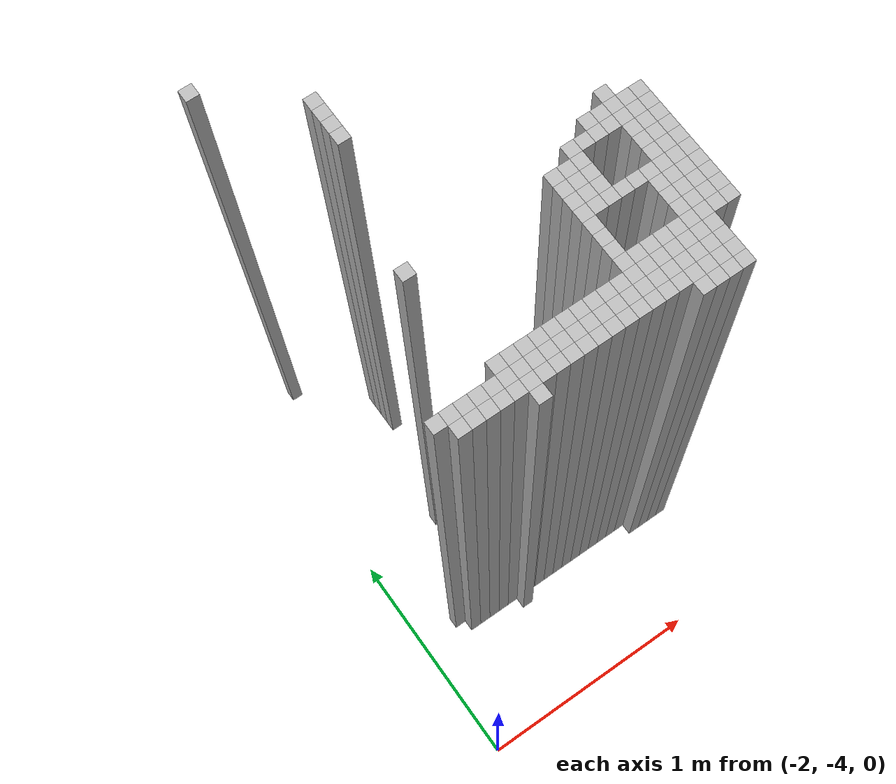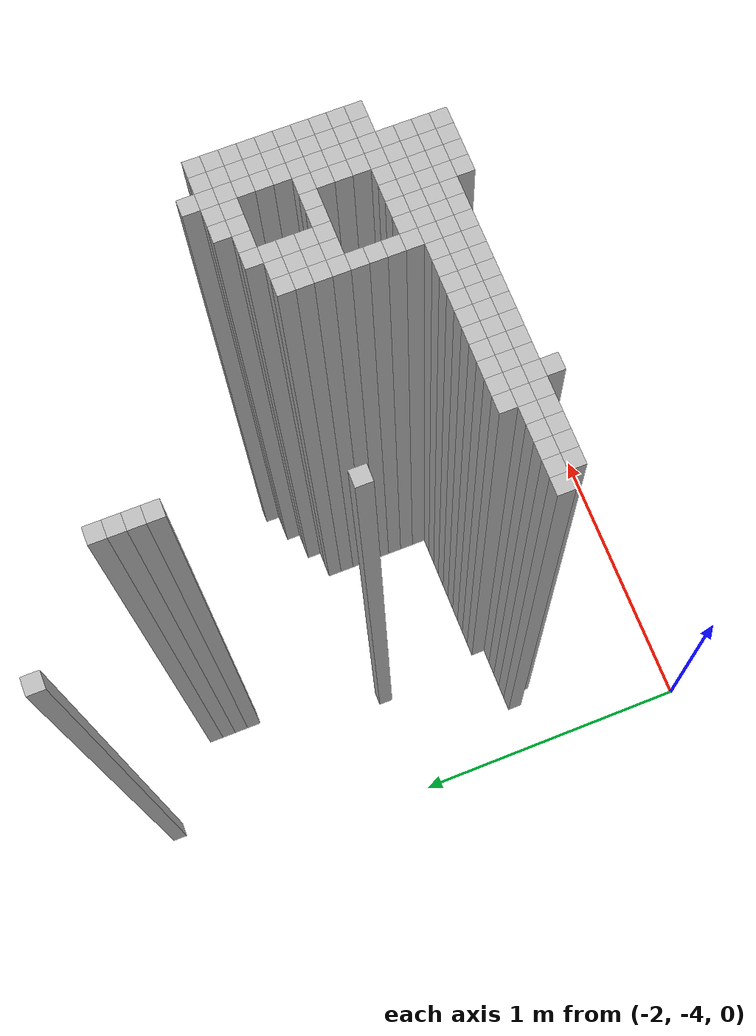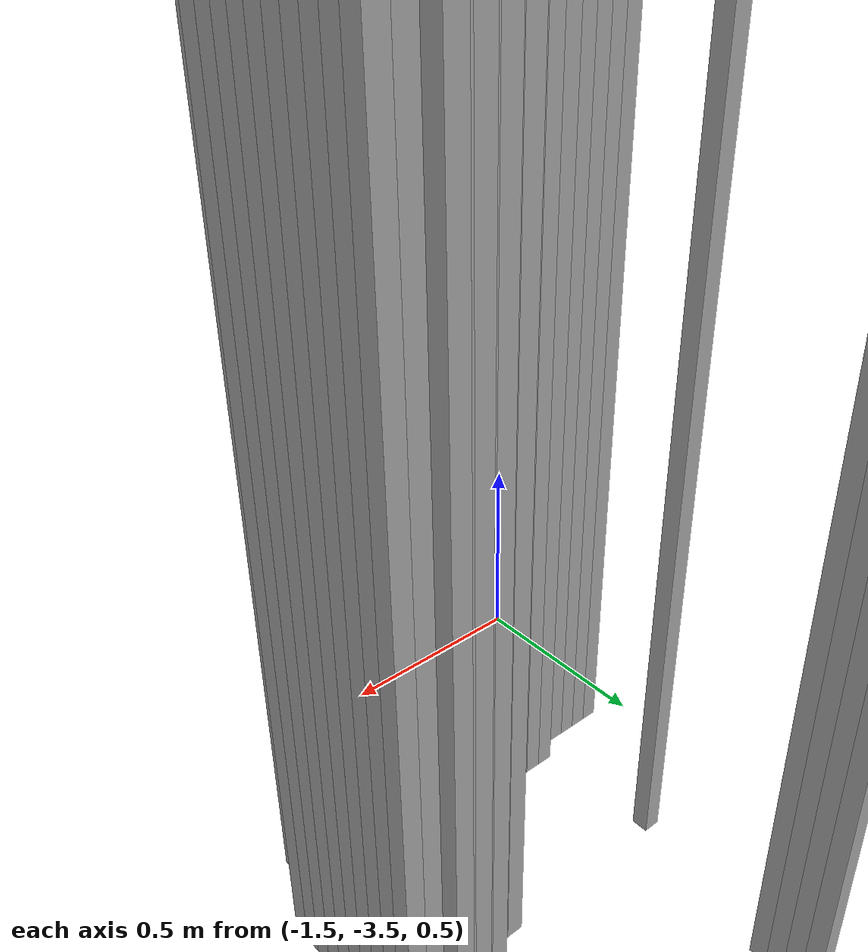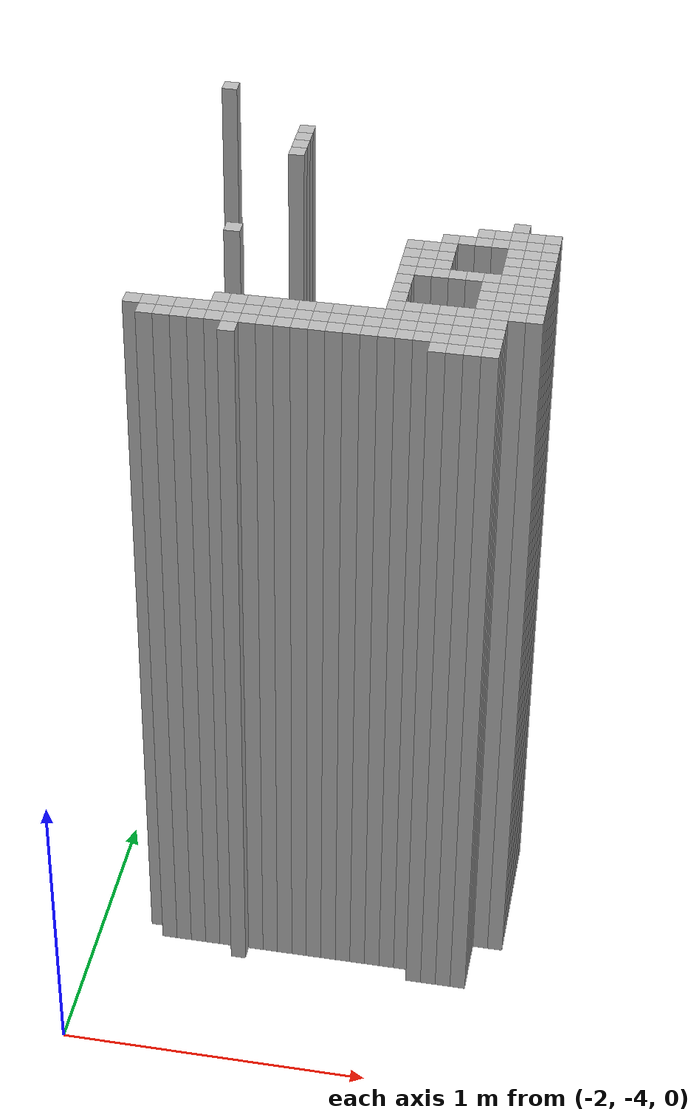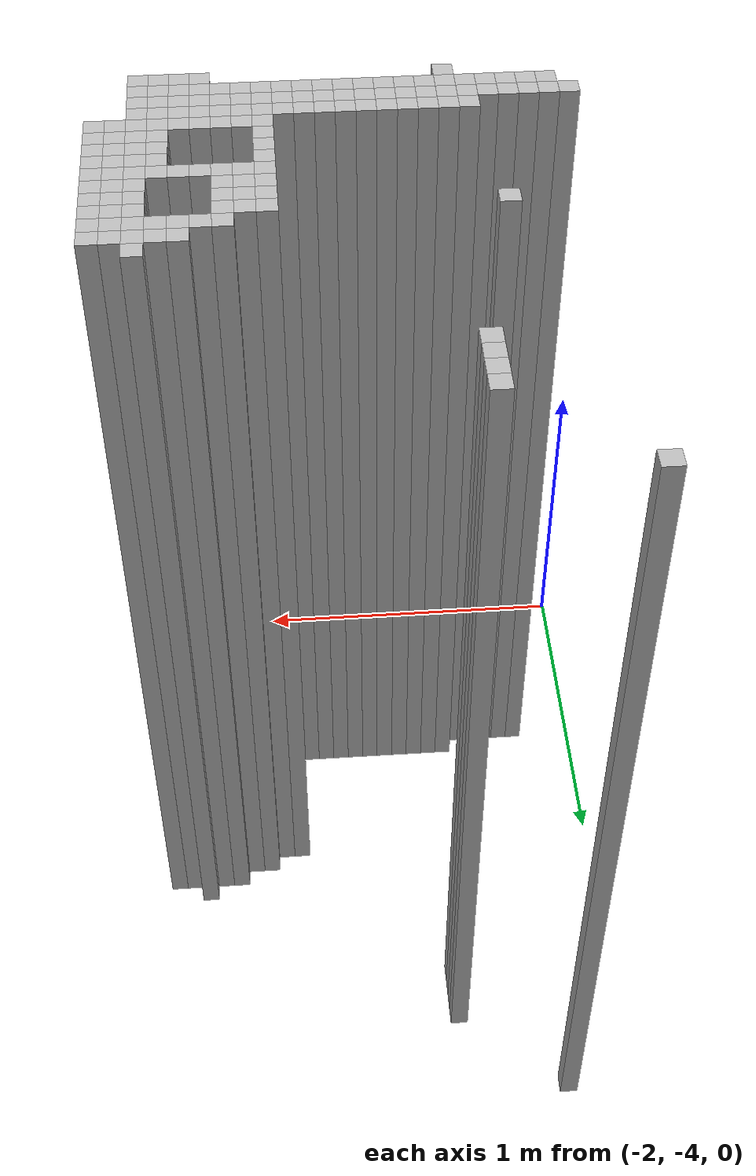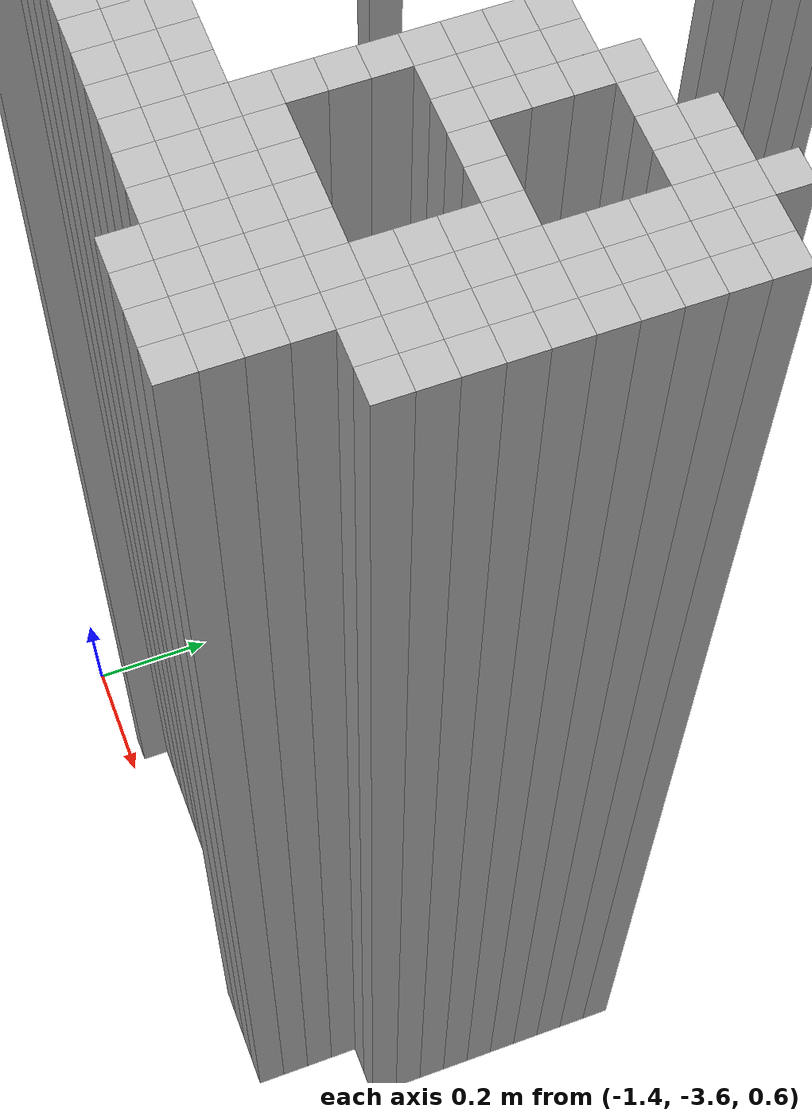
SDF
<sdf version="1.9">
 <world name="map_world">
  <model name="wall_187_195">
   <static>true</static>
   <pose>-1.811 -2.070 1.250 0 0 0</pose>
   <link name="link">
    <collision name="collision"><geometry><box><size>0.050 0.050 2.500</size></box></geometry></collision>
    <visual name="visual"><geometry><box><size>0.050 0.050 2.500</size></box></geometry></visual>
   </link>
  </model>
  <model name="wall_193_200">
   <static>true</static>
   <pose>-1.511 -2.320 1.250 0 0 0</pose>
   <link name="link">
    <collision name="collision"><geometry><box><size>0.050 0.050 2.500</size></box></geometry></collision>
    <visual name="visual"><geometry><box><size>0.050 0.050 2.500</size></box></geometry></visual>
   </link>
  </model>
  <model name="wall_193_201">
   <static>true</static>
   <pose>-1.511 -2.370 1.250 0 0 0</pose>
   <link name="link">
    <collision name="collision"><geometry><box><size>0.050 0.050 2.500</size></box></geometry></collision>
    <visual name="visual"><geometry><box><size>0.050 0.050 2.500</size></box></geometry></visual>
   </link>
  </model>
  <model name="wall_193_202">
   <static>true</static>
   <pose>-1.511 -2.420 1.250 0 0 0</pose>
   <link name="link">
    <collision name="collision"><geometry><box><size>0.050 0.050 2.500</size></box></geometry></collision>
    <visual name="visual"><geometry><box><size>0.050 0.050 2.500</size></box></geometry></visual>
   </link>
  </model>
  <model name="wall_193_203">
   <static>true</static>
   <pose>-1.511 -2.470 1.250 0 0 0</pose>
   <link name="link">
    <collision name="collision"><geometry><box><size>0.050 0.050 2.500</size></box></geometry></collision>
    <visual name="visual"><geometry><box><size>0.050 0.050 2.500</size></box></geometry></visual>
   </link>
  </model>
  <model name="wall_208_210">
   <static>true</static>
   <pose>-0.761 -2.820 1.250 0 0 0</pose>
   <link name="link">
    <collision name="collision"><geometry><box><size>0.050 0.050 2.500</size></box></geometry></collision>
    <visual name="visual"><geometry><box><size>0.050 0.050 2.500</size></box></geometry></visual>
   </link>
  </model>
  <model name="wall_206_211">
   <static>true</static>
   <pose>-0.861 -2.870 1.250 0 0 0</pose>
   <link name="link">
    <collision name="collision"><geometry><box><size>0.050 0.050 2.500</size></box></geometry></collision>
    <visual name="visual"><geometry><box><size>0.050 0.050 2.500</size></box></geometry></visual>
   </link>
  </model>
  <model name="wall_207_211">
   <static>true</static>
   <pose>-0.811 -2.870 1.250 0 0 0</pose>
   <link name="link">
    <collision name="collision"><geometry><box><size>0.050 0.050 2.500</size></box></geometry></collision>
    <visual name="visual"><geometry><box><size>0.050 0.050 2.500</size></box></geometry></visual>
   </link>
  </model>
  <model name="wall_208_211">
   <static>true</static>
   <pose>-0.761 -2.870 1.250 0 0 0</pose>
   <link name="link">
    <collision name="collision"><geometry><box><size>0.050 0.050 2.500</size></box></geometry></collision>
    <visual name="visual"><geometry><box><size>0.050 0.050 2.500</size></box></geometry></visual>
   </link>
  </model>
  <model name="wall_209_211">
   <static>true</static>
   <pose>-0.711 -2.870 1.250 0 0 0</pose>
   <link name="link">
    <collision name="collision"><geometry><box><size>0.050 0.050 2.500</size></box></geometry></collision>
    <visual name="visual"><geometry><box><size>0.050 0.050 2.500</size></box></geometry></visual>
   </link>
  </model>
  <model name="wall_210_211">
   <static>true</static>
   <pose>-0.661 -2.870 1.250 0 0 0</pose>
   <link name="link">
    <collision name="collision"><geometry><box><size>0.050 0.050 2.500</size></box></geometry></collision>
    <visual name="visual"><geometry><box><size>0.050 0.050 2.500</size></box></geometry></visual>
   </link>
  </model>
  <model name="wall_204_212">
   <static>true</static>
   <pose>-0.961 -2.920 1.250 0 0 0</pose>
   <link name="link">
    <collision name="collision"><geometry><box><size>0.050 0.050 2.500</size></box></geometry></collision>
    <visual name="visual"><geometry><box><size>0.050 0.050 2.500</size></box></geometry></visual>
   </link>
  </model>
  <model name="wall_205_212">
   <static>true</static>
   <pose>-0.911 -2.920 1.250 0 0 0</pose>
   <link name="link">
    <collision name="collision"><geometry><box><size>0.050 0.050 2.500</size></box></geometry></collision>
    <visual name="visual"><geometry><box><size>0.050 0.050 2.500</size></box></geometry></visual>
   </link>
  </model>
  <model name="wall_206_212">
   <static>true</static>
   <pose>-0.861 -2.920 1.250 0 0 0</pose>
   <link name="link">
    <collision name="collision"><geometry><box><size>0.050 0.050 2.500</size></box></geometry></collision>
    <visual name="visual"><geometry><box><size>0.050 0.050 2.500</size></box></geometry></visual>
   </link>
  </model>
  <model name="wall_207_212">
   <static>true</static>
   <pose>-0.811 -2.920 1.250 0 0 0</pose>
   <link name="link">
    <collision name="collision"><geometry><box><size>0.050 0.050 2.500</size></box></geometry></collision>
    <visual name="visual"><geometry><box><size>0.050 0.050 2.500</size></box></geometry></visual>
   </link>
  </model>
  <model name="wall_208_212">
   <static>true</static>
   <pose>-0.761 -2.920 1.250 0 0 0</pose>
   <link name="link">
    <collision name="collision"><geometry><box><size>0.050 0.050 2.500</size></box></geometry></collision>
    <visual name="visual"><geometry><box><size>0.050 0.050 2.500</size></box></geometry></visual>
   </link>
  </model>
  <model name="wall_209_212">
   <static>true</static>
   <pose>-0.711 -2.920 1.250 0 0 0</pose>
   <link name="link">
    <collision name="collision"><geometry><box><size>0.050 0.050 2.500</size></box></geometry></collision>
    <visual name="visual"><geometry><box><size>0.050 0.050 2.500</size></box></geometry></visual>
   </link>
  </model>
  <model name="wall_210_212">
   <static>true</static>
   <pose>-0.661 -2.920 1.250 0 0 0</pose>
   <link name="link">
    <collision name="collision"><geometry><box><size>0.050 0.050 2.500</size></box></geometry></collision>
    <visual name="visual"><geometry><box><size>0.050 0.050 2.500</size></box></geometry></visual>
   </link>
  </model>
  <model name="wall_191_213">
   <static>true</static>
   <pose>-1.611 -2.970 1.250 0 0 0</pose>
   <link name="link">
    <collision name="collision"><geometry><box><size>0.050 0.050 2.500</size></box></geometry></collision>
    <visual name="visual"><geometry><box><size>0.050 0.050 2.500</size></box></geometry></visual>
   </link>
  </model>
  <model name="wall_202_213">
   <static>true</static>
   <pose>-1.061 -2.970 1.250 0 0 0</pose>
   <link name="link">
    <collision name="collision"><geometry><box><size>0.050 0.050 2.500</size></box></geometry></collision>
    <visual name="visual"><geometry><box><size>0.050 0.050 2.500</size></box></geometry></visual>
   </link>
  </model>
  <model name="wall_203_213">
   <static>true</static>
   <pose>-1.011 -2.970 1.250 0 0 0</pose>
   <link name="link">
    <collision name="collision"><geometry><box><size>0.050 0.050 2.500</size></box></geometry></collision>
    <visual name="visual"><geometry><box><size>0.050 0.050 2.500</size></box></geometry></visual>
   </link>
  </model>
  <model name="wall_204_213">
   <static>true</static>
   <pose>-0.961 -2.970 1.250 0 0 0</pose>
   <link name="link">
    <collision name="collision"><geometry><box><size>0.050 0.050 2.500</size></box></geometry></collision>
    <visual name="visual"><geometry><box><size>0.050 0.050 2.500</size></box></geometry></visual>
   </link>
  </model>
  <model name="wall_208_213">
   <static>true</static>
   <pose>-0.761 -2.970 1.250 0 0 0</pose>
   <link name="link">
    <collision name="collision"><geometry><box><size>0.050 0.050 2.500</size></box></geometry></collision>
    <visual name="visual"><geometry><box><size>0.050 0.050 2.500</size></box></geometry></visual>
   </link>
  </model>
  <model name="wall_209_213">
   <static>true</static>
   <pose>-0.711 -2.970 1.250 0 0 0</pose>
   <link name="link">
    <collision name="collision"><geometry><box><size>0.050 0.050 2.500</size></box></geometry></collision>
    <visual name="visual"><geometry><box><size>0.050 0.050 2.500</size></box></geometry></visual>
   </link>
  </model>
  <model name="wall_210_213">
   <static>true</static>
   <pose>-0.661 -2.970 1.250 0 0 0</pose>
   <link name="link">
    <collision name="collision"><geometry><box><size>0.050 0.050 2.500</size></box></geometry></collision>
    <visual name="visual"><geometry><box><size>0.050 0.050 2.500</size></box></geometry></visual>
   </link>
  </model>
  <model name="wall_202_214">
   <static>true</static>
   <pose>-1.061 -3.020 1.250 0 0 0</pose>
   <link name="link">
    <collision name="collision"><geometry><box><size>0.050 0.050 2.500</size></box></geometry></collision>
    <visual name="visual"><geometry><box><size>0.050 0.050 2.500</size></box></geometry></visual>
   </link>
  </model>
  <model name="wall_203_214">
   <static>true</static>
   <pose>-1.011 -3.020 1.250 0 0 0</pose>
   <link name="link">
    <collision name="collision"><geometry><box><size>0.050 0.050 2.500</size></box></geometry></collision>
    <visual name="visual"><geometry><box><size>0.050 0.050 2.500</size></box></geometry></visual>
   </link>
  </model>
  <model name="wall_204_214">
   <static>true</static>
   <pose>-0.961 -3.020 1.250 0 0 0</pose>
   <link name="link">
    <collision name="collision"><geometry><box><size>0.050 0.050 2.500</size></box></geometry></collision>
    <visual name="visual"><geometry><box><size>0.050 0.050 2.500</size></box></geometry></visual>
   </link>
  </model>
  <model name="wall_208_214">
   <static>true</static>
   <pose>-0.761 -3.020 1.250 0 0 0</pose>
   <link name="link">
    <collision name="collision"><geometry><box><size>0.050 0.050 2.500</size></box></geometry></collision>
    <visual name="visual"><geometry><box><size>0.050 0.050 2.500</size></box></geometry></visual>
   </link>
  </model>
  <model name="wall_209_214">
   <static>true</static>
   <pose>-0.711 -3.020 1.250 0 0 0</pose>
   <link name="link">
    <collision name="collision"><geometry><box><size>0.050 0.050 2.500</size></box></geometry></collision>
    <visual name="visual"><geometry><box><size>0.050 0.050 2.500</size></box></geometry></visual>
   </link>
  </model>
  <model name="wall_210_214">
   <static>true</static>
   <pose>-0.661 -3.020 1.250 0 0 0</pose>
   <link name="link">
    <collision name="collision"><geometry><box><size>0.050 0.050 2.500</size></box></geometry></collision>
    <visual name="visual"><geometry><box><size>0.050 0.050 2.500</size></box></geometry></visual>
   </link>
  </model>
  <model name="wall_202_215">
   <static>true</static>
   <pose>-1.061 -3.070 1.250 0 0 0</pose>
   <link name="link">
    <collision name="collision"><geometry><box><size>0.050 0.050 2.500</size></box></geometry></collision>
    <visual name="visual"><geometry><box><size>0.050 0.050 2.500</size></box></geometry></visual>
   </link>
  </model>
  <model name="wall_203_215">
   <static>true</static>
   <pose>-1.011 -3.070 1.250 0 0 0</pose>
   <link name="link">
    <collision name="collision"><geometry><box><size>0.050 0.050 2.500</size></box></geometry></collision>
    <visual name="visual"><geometry><box><size>0.050 0.050 2.500</size></box></geometry></visual>
   </link>
  </model>
  <model name="wall_204_215">
   <static>true</static>
   <pose>-0.961 -3.070 1.250 0 0 0</pose>
   <link name="link">
    <collision name="collision"><geometry><box><size>0.050 0.050 2.500</size></box></geometry></collision>
    <visual name="visual"><geometry><box><size>0.050 0.050 2.500</size></box></geometry></visual>
   </link>
  </model>
  <model name="wall_208_215">
   <static>true</static>
   <pose>-0.761 -3.070 1.250 0 0 0</pose>
   <link name="link">
    <collision name="collision"><geometry><box><size>0.050 0.050 2.500</size></box></geometry></collision>
    <visual name="visual"><geometry><box><size>0.050 0.050 2.500</size></box></geometry></visual>
   </link>
  </model>
  <model name="wall_209_215">
   <static>true</static>
   <pose>-0.711 -3.070 1.250 0 0 0</pose>
   <link name="link">
    <collision name="collision"><geometry><box><size>0.050 0.050 2.500</size></box></geometry></collision>
    <visual name="visual"><geometry><box><size>0.050 0.050 2.500</size></box></geometry></visual>
   </link>
  </model>
  <model name="wall_210_215">
   <static>true</static>
   <pose>-0.661 -3.070 1.250 0 0 0</pose>
   <link name="link">
    <collision name="collision"><geometry><box><size>0.050 0.050 2.500</size></box></geometry></collision>
    <visual name="visual"><geometry><box><size>0.050 0.050 2.500</size></box></geometry></visual>
   </link>
  </model>
  <model name="wall_202_216">
   <static>true</static>
   <pose>-1.061 -3.120 1.250 0 0 0</pose>
   <link name="link">
    <collision name="collision"><geometry><box><size>0.050 0.050 2.500</size></box></geometry></collision>
    <visual name="visual"><geometry><box><size>0.050 0.050 2.500</size></box></geometry></visual>
   </link>
  </model>
  <model name="wall_203_216">
   <static>true</static>
   <pose>-1.011 -3.120 1.250 0 0 0</pose>
   <link name="link">
    <collision name="collision"><geometry><box><size>0.050 0.050 2.500</size></box></geometry></collision>
    <visual name="visual"><geometry><box><size>0.050 0.050 2.500</size></box></geometry></visual>
   </link>
  </model>
  <model name="wall_204_216">
   <static>true</static>
   <pose>-0.961 -3.120 1.250 0 0 0</pose>
   <link name="link">
    <collision name="collision"><geometry><box><size>0.050 0.050 2.500</size></box></geometry></collision>
    <visual name="visual"><geometry><box><size>0.050 0.050 2.500</size></box></geometry></visual>
   </link>
  </model>
  <model name="wall_205_216">
   <static>true</static>
   <pose>-0.911 -3.120 1.250 0 0 0</pose>
   <link name="link">
    <collision name="collision"><geometry><box><size>0.050 0.050 2.500</size></box></geometry></collision>
    <visual name="visual"><geometry><box><size>0.050 0.050 2.500</size></box></geometry></visual>
   </link>
  </model>
  <model name="wall_206_216">
   <static>true</static>
   <pose>-0.861 -3.120 1.250 0 0 0</pose>
   <link name="link">
    <collision name="collision"><geometry><box><size>0.050 0.050 2.500</size></box></geometry></collision>
    <visual name="visual"><geometry><box><size>0.050 0.050 2.500</size></box></geometry></visual>
   </link>
  </model>
  <model name="wall_207_216">
   <static>true</static>
   <pose>-0.811 -3.120 1.250 0 0 0</pose>
   <link name="link">
    <collision name="collision"><geometry><box><size>0.050 0.050 2.500</size></box></geometry></collision>
    <visual name="visual"><geometry><box><size>0.050 0.050 2.500</size></box></geometry></visual>
   </link>
  </model>
  <model name="wall_208_216">
   <static>true</static>
   <pose>-0.761 -3.120 1.250 0 0 0</pose>
   <link name="link">
    <collision name="collision"><geometry><box><size>0.050 0.050 2.500</size></box></geometry></collision>
    <visual name="visual"><geometry><box><size>0.050 0.050 2.500</size></box></geometry></visual>
   </link>
  </model>
  <model name="wall_209_216">
   <static>true</static>
   <pose>-0.711 -3.120 1.250 0 0 0</pose>
   <link name="link">
    <collision name="collision"><geometry><box><size>0.050 0.050 2.500</size></box></geometry></collision>
    <visual name="visual"><geometry><box><size>0.050 0.050 2.500</size></box></geometry></visual>
   </link>
  </model>
  <model name="wall_210_216">
   <static>true</static>
   <pose>-0.661 -3.120 1.250 0 0 0</pose>
   <link name="link">
    <collision name="collision"><geometry><box><size>0.050 0.050 2.500</size></box></geometry></collision>
    <visual name="visual"><geometry><box><size>0.050 0.050 2.500</size></box></geometry></visual>
   </link>
  </model>
  <model name="wall_202_217">
   <static>true</static>
   <pose>-1.061 -3.170 1.250 0 0 0</pose>
   <link name="link">
    <collision name="collision"><geometry><box><size>0.050 0.050 2.500</size></box></geometry></collision>
    <visual name="visual"><geometry><box><size>0.050 0.050 2.500</size></box></geometry></visual>
   </link>
  </model>
  <model name="wall_207_217">
   <static>true</static>
   <pose>-0.811 -3.170 1.250 0 0 0</pose>
   <link name="link">
    <collision name="collision"><geometry><box><size>0.050 0.050 2.500</size></box></geometry></collision>
    <visual name="visual"><geometry><box><size>0.050 0.050 2.500</size></box></geometry></visual>
   </link>
  </model>
  <model name="wall_208_217">
   <static>true</static>
   <pose>-0.761 -3.170 1.250 0 0 0</pose>
   <link name="link">
    <collision name="collision"><geometry><box><size>0.050 0.050 2.500</size></box></geometry></collision>
    <visual name="visual"><geometry><box><size>0.050 0.050 2.500</size></box></geometry></visual>
   </link>
  </model>
  <model name="wall_209_217">
   <static>true</static>
   <pose>-0.711 -3.170 1.250 0 0 0</pose>
   <link name="link">
    <collision name="collision"><geometry><box><size>0.050 0.050 2.500</size></box></geometry></collision>
    <visual name="visual"><geometry><box><size>0.050 0.050 2.500</size></box></geometry></visual>
   </link>
  </model>
  <model name="wall_210_217">
   <static>true</static>
   <pose>-0.661 -3.170 1.250 0 0 0</pose>
   <link name="link">
    <collision name="collision"><geometry><box><size>0.050 0.050 2.500</size></box></geometry></collision>
    <visual name="visual"><geometry><box><size>0.050 0.050 2.500</size></box></geometry></visual>
   </link>
  </model>
  <model name="wall_202_218">
   <static>true</static>
   <pose>-1.061 -3.220 1.250 0 0 0</pose>
   <link name="link">
    <collision name="collision"><geometry><box><size>0.050 0.050 2.500</size></box></geometry></collision>
    <visual name="visual"><geometry><box><size>0.050 0.050 2.500</size></box></geometry></visual>
   </link>
  </model>
  <model name="wall_207_218">
   <static>true</static>
   <pose>-0.811 -3.220 1.250 0 0 0</pose>
   <link name="link">
    <collision name="collision"><geometry><box><size>0.050 0.050 2.500</size></box></geometry></collision>
    <visual name="visual"><geometry><box><size>0.050 0.050 2.500</size></box></geometry></visual>
   </link>
  </model>
  <model name="wall_208_218">
   <static>true</static>
   <pose>-0.761 -3.220 1.250 0 0 0</pose>
   <link name="link">
    <collision name="collision"><geometry><box><size>0.050 0.050 2.500</size></box></geometry></collision>
    <visual name="visual"><geometry><box><size>0.050 0.050 2.500</size></box></geometry></visual>
   </link>
  </model>
  <model name="wall_209_218">
   <static>true</static>
   <pose>-0.711 -3.220 1.250 0 0 0</pose>
   <link name="link">
    <collision name="collision"><geometry><box><size>0.050 0.050 2.500</size></box></geometry></collision>
    <visual name="visual"><geometry><box><size>0.050 0.050 2.500</size></box></geometry></visual>
   </link>
  </model>
  <model name="wall_210_218">
   <static>true</static>
   <pose>-0.661 -3.220 1.250 0 0 0</pose>
   <link name="link">
    <collision name="collision"><geometry><box><size>0.050 0.050 2.500</size></box></geometry></collision>
    <visual name="visual"><geometry><box><size>0.050 0.050 2.500</size></box></geometry></visual>
   </link>
  </model>
  <model name="wall_202_219">
   <static>true</static>
   <pose>-1.061 -3.270 1.250 0 0 0</pose>
   <link name="link">
    <collision name="collision"><geometry><box><size>0.050 0.050 2.500</size></box></geometry></collision>
    <visual name="visual"><geometry><box><size>0.050 0.050 2.500</size></box></geometry></visual>
   </link>
  </model>
  <model name="wall_207_219">
   <static>true</static>
   <pose>-0.811 -3.270 1.250 0 0 0</pose>
   <link name="link">
    <collision name="collision"><geometry><box><size>0.050 0.050 2.500</size></box></geometry></collision>
    <visual name="visual"><geometry><box><size>0.050 0.050 2.500</size></box></geometry></visual>
   </link>
  </model>
  <model name="wall_208_219">
   <static>true</static>
   <pose>-0.761 -3.270 1.250 0 0 0</pose>
   <link name="link">
    <collision name="collision"><geometry><box><size>0.050 0.050 2.500</size></box></geometry></collision>
    <visual name="visual"><geometry><box><size>0.050 0.050 2.500</size></box></geometry></visual>
   </link>
  </model>
  <model name="wall_209_219">
   <static>true</static>
   <pose>-0.711 -3.270 1.250 0 0 0</pose>
   <link name="link">
    <collision name="collision"><geometry><box><size>0.050 0.050 2.500</size></box></geometry></collision>
    <visual name="visual"><geometry><box><size>0.050 0.050 2.500</size></box></geometry></visual>
   </link>
  </model>
  <model name="wall_210_219">
   <static>true</static>
   <pose>-0.661 -3.270 1.250 0 0 0</pose>
   <link name="link">
    <collision name="collision"><geometry><box><size>0.050 0.050 2.500</size></box></geometry></collision>
    <visual name="visual"><geometry><box><size>0.050 0.050 2.500</size></box></geometry></visual>
   </link>
  </model>
  <model name="wall_202_220">
   <static>true</static>
   <pose>-1.061 -3.320 1.250 0 0 0</pose>
   <link name="link">
    <collision name="collision"><geometry><box><size>0.050 0.050 2.500</size></box></geometry></collision>
    <visual name="visual"><geometry><box><size>0.050 0.050 2.500</size></box></geometry></visual>
   </link>
  </model>
  <model name="wall_203_220">
   <static>true</static>
   <pose>-1.011 -3.320 1.250 0 0 0</pose>
   <link name="link">
    <collision name="collision"><geometry><box><size>0.050 0.050 2.500</size></box></geometry></collision>
    <visual name="visual"><geometry><box><size>0.050 0.050 2.500</size></box></geometry></visual>
   </link>
  </model>
  <model name="wall_204_220">
   <static>true</static>
   <pose>-0.961 -3.320 1.250 0 0 0</pose>
   <link name="link">
    <collision name="collision"><geometry><box><size>0.050 0.050 2.500</size></box></geometry></collision>
    <visual name="visual"><geometry><box><size>0.050 0.050 2.500</size></box></geometry></visual>
   </link>
  </model>
  <model name="wall_205_220">
   <static>true</static>
   <pose>-0.911 -3.320 1.250 0 0 0</pose>
   <link name="link">
    <collision name="collision"><geometry><box><size>0.050 0.050 2.500</size></box></geometry></collision>
    <visual name="visual"><geometry><box><size>0.050 0.050 2.500</size></box></geometry></visual>
   </link>
  </model>
  <model name="wall_206_220">
   <static>true</static>
   <pose>-0.861 -3.320 1.250 0 0 0</pose>
   <link name="link">
    <collision name="collision"><geometry><box><size>0.050 0.050 2.500</size></box></geometry></collision>
    <visual name="visual"><geometry><box><size>0.050 0.050 2.500</size></box></geometry></visual>
   </link>
  </model>
  <model name="wall_207_220">
   <static>true</static>
   <pose>-0.811 -3.320 1.250 0 0 0</pose>
   <link name="link">
    <collision name="collision"><geometry><box><size>0.050 0.050 2.500</size></box></geometry></collision>
    <visual name="visual"><geometry><box><size>0.050 0.050 2.500</size></box></geometry></visual>
   </link>
  </model>
  <model name="wall_208_220">
   <static>true</static>
   <pose>-0.761 -3.320 1.250 0 0 0</pose>
   <link name="link">
    <collision name="collision"><geometry><box><size>0.050 0.050 2.500</size></box></geometry></collision>
    <visual name="visual"><geometry><box><size>0.050 0.050 2.500</size></box></geometry></visual>
   </link>
  </model>
  <model name="wall_209_220">
   <static>true</static>
   <pose>-0.711 -3.320 1.250 0 0 0</pose>
   <link name="link">
    <collision name="collision"><geometry><box><size>0.050 0.050 2.500</size></box></geometry></collision>
    <visual name="visual"><geometry><box><size>0.050 0.050 2.500</size></box></geometry></visual>
   </link>
  </model>
  <model name="wall_210_220">
   <static>true</static>
   <pose>-0.661 -3.320 1.250 0 0 0</pose>
   <link name="link">
    <collision name="collision"><geometry><box><size>0.050 0.050 2.500</size></box></geometry></collision>
    <visual name="visual"><geometry><box><size>0.050 0.050 2.500</size></box></geometry></visual>
   </link>
  </model>
  <model name="wall_192_221">
   <static>true</static>
   <pose>-1.561 -3.370 1.250 0 0 0</pose>
   <link name="link">
    <collision name="collision"><geometry><box><size>0.050 0.050 2.500</size></box></geometry></collision>
    <visual name="visual"><geometry><box><size>0.050 0.050 2.500</size></box></geometry></visual>
   </link>
  </model>
  <model name="wall_193_221">
   <static>true</static>
   <pose>-1.511 -3.370 1.250 0 0 0</pose>
   <link name="link">
    <collision name="collision"><geometry><box><size>0.050 0.050 2.500</size></box></geometry></collision>
    <visual name="visual"><geometry><box><size>0.050 0.050 2.500</size></box></geometry></visual>
   </link>
  </model>
  <model name="wall_194_221">
   <static>true</static>
   <pose>-1.461 -3.370 1.250 0 0 0</pose>
   <link name="link">
    <collision name="collision"><geometry><box><size>0.050 0.050 2.500</size></box></geometry></collision>
    <visual name="visual"><geometry><box><size>0.050 0.050 2.500</size></box></geometry></visual>
   </link>
  </model>
  <model name="wall_195_221">
   <static>true</static>
   <pose>-1.411 -3.370 1.250 0 0 0</pose>
   <link name="link">
    <collision name="collision"><geometry><box><size>0.050 0.050 2.500</size></box></geometry></collision>
    <visual name="visual"><geometry><box><size>0.050 0.050 2.500</size></box></geometry></visual>
   </link>
  </model>
  <model name="wall_196_221">
   <static>true</static>
   <pose>-1.361 -3.370 1.250 0 0 0</pose>
   <link name="link">
    <collision name="collision"><geometry><box><size>0.050 0.050 2.500</size></box></geometry></collision>
    <visual name="visual"><geometry><box><size>0.050 0.050 2.500</size></box></geometry></visual>
   </link>
  </model>
  <model name="wall_197_221">
   <static>true</static>
   <pose>-1.311 -3.370 1.250 0 0 0</pose>
   <link name="link">
    <collision name="collision"><geometry><box><size>0.050 0.050 2.500</size></box></geometry></collision>
    <visual name="visual"><geometry><box><size>0.050 0.050 2.500</size></box></geometry></visual>
   </link>
  </model>
  <model name="wall_198_221">
   <static>true</static>
   <pose>-1.261 -3.370 1.250 0 0 0</pose>
   <link name="link">
    <collision name="collision"><geometry><box><size>0.050 0.050 2.500</size></box></geometry></collision>
    <visual name="visual"><geometry><box><size>0.050 0.050 2.500</size></box></geometry></visual>
   </link>
  </model>
  <model name="wall_199_221">
   <static>true</static>
   <pose>-1.211 -3.370 1.250 0 0 0</pose>
   <link name="link">
    <collision name="collision"><geometry><box><size>0.050 0.050 2.500</size></box></geometry></collision>
    <visual name="visual"><geometry><box><size>0.050 0.050 2.500</size></box></geometry></visual>
   </link>
  </model>
  <model name="wall_200_221">
   <static>true</static>
   <pose>-1.161 -3.370 1.250 0 0 0</pose>
   <link name="link">
    <collision name="collision"><geometry><box><size>0.050 0.050 2.500</size></box></geometry></collision>
    <visual name="visual"><geometry><box><size>0.050 0.050 2.500</size></box></geometry></visual>
   </link>
  </model>
  <model name="wall_201_221">
   <static>true</static>
   <pose>-1.111 -3.370 1.250 0 0 0</pose>
   <link name="link">
    <collision name="collision"><geometry><box><size>0.050 0.050 2.500</size></box></geometry></collision>
    <visual name="visual"><geometry><box><size>0.050 0.050 2.500</size></box></geometry></visual>
   </link>
  </model>
  <model name="wall_202_221">
   <static>true</static>
   <pose>-1.061 -3.370 1.250 0 0 0</pose>
   <link name="link">
    <collision name="collision"><geometry><box><size>0.050 0.050 2.500</size></box></geometry></collision>
    <visual name="visual"><geometry><box><size>0.050 0.050 2.500</size></box></geometry></visual>
   </link>
  </model>
  <model name="wall_203_221">
   <static>true</static>
   <pose>-1.011 -3.370 1.250 0 0 0</pose>
   <link name="link">
    <collision name="collision"><geometry><box><size>0.050 0.050 2.500</size></box></geometry></collision>
    <visual name="visual"><geometry><box><size>0.050 0.050 2.500</size></box></geometry></visual>
   </link>
  </model>
  <model name="wall_204_221">
   <static>true</static>
   <pose>-0.961 -3.370 1.250 0 0 0</pose>
   <link name="link">
    <collision name="collision"><geometry><box><size>0.050 0.050 2.500</size></box></geometry></collision>
    <visual name="visual"><geometry><box><size>0.050 0.050 2.500</size></box></geometry></visual>
   </link>
  </model>
  <model name="wall_205_221">
   <static>true</static>
   <pose>-0.911 -3.370 1.250 0 0 0</pose>
   <link name="link">
    <collision name="collision"><geometry><box><size>0.050 0.050 2.500</size></box></geometry></collision>
    <visual name="visual"><geometry><box><size>0.050 0.050 2.500</size></box></geometry></visual>
   </link>
  </model>
  <model name="wall_206_221">
   <static>true</static>
   <pose>-0.861 -3.370 1.250 0 0 0</pose>
   <link name="link">
    <collision name="collision"><geometry><box><size>0.050 0.050 2.500</size></box></geometry></collision>
    <visual name="visual"><geometry><box><size>0.050 0.050 2.500</size></box></geometry></visual>
   </link>
  </model>
  <model name="wall_207_221">
   <static>true</static>
   <pose>-0.811 -3.370 1.250 0 0 0</pose>
   <link name="link">
    <collision name="collision"><geometry><box><size>0.050 0.050 2.500</size></box></geometry></collision>
    <visual name="visual"><geometry><box><size>0.050 0.050 2.500</size></box></geometry></visual>
   </link>
  </model>
  <model name="wall_208_221">
   <static>true</static>
   <pose>-0.761 -3.370 1.250 0 0 0</pose>
   <link name="link">
    <collision name="collision"><geometry><box><size>0.050 0.050 2.500</size></box></geometry></collision>
    <visual name="visual"><geometry><box><size>0.050 0.050 2.500</size></box></geometry></visual>
   </link>
  </model>
  <model name="wall_187_222">
   <static>true</static>
   <pose>-1.811 -3.420 1.250 0 0 0</pose>
   <link name="link">
    <collision name="collision"><geometry><box><size>0.050 0.050 2.500</size></box></geometry></collision>
    <visual name="visual"><geometry><box><size>0.050 0.050 2.500</size></box></geometry></visual>
   </link>
  </model>
  <model name="wall_188_222">
   <static>true</static>
   <pose>-1.761 -3.420 1.250 0 0 0</pose>
   <link name="link">
    <collision name="collision"><geometry><box><size>0.050 0.050 2.500</size></box></geometry></collision>
    <visual name="visual"><geometry><box><size>0.050 0.050 2.500</size></box></geometry></visual>
   </link>
  </model>
  <model name="wall_189_222">
   <static>true</static>
   <pose>-1.711 -3.420 1.250 0 0 0</pose>
   <link name="link">
    <collision name="collision"><geometry><box><size>0.050 0.050 2.500</size></box></geometry></collision>
    <visual name="visual"><geometry><box><size>0.050 0.050 2.500</size></box></geometry></visual>
   </link>
  </model>
  <model name="wall_190_222">
   <static>true</static>
   <pose>-1.661 -3.420 1.250 0 0 0</pose>
   <link name="link">
    <collision name="collision"><geometry><box><size>0.050 0.050 2.500</size></box></geometry></collision>
    <visual name="visual"><geometry><box><size>0.050 0.050 2.500</size></box></geometry></visual>
   </link>
  </model>
  <model name="wall_191_222">
   <static>true</static>
   <pose>-1.611 -3.420 1.250 0 0 0</pose>
   <link name="link">
    <collision name="collision"><geometry><box><size>0.050 0.050 2.500</size></box></geometry></collision>
    <visual name="visual"><geometry><box><size>0.050 0.050 2.500</size></box></geometry></visual>
   </link>
  </model>
  <model name="wall_192_222">
   <static>true</static>
   <pose>-1.561 -3.420 1.250 0 0 0</pose>
   <link name="link">
    <collision name="collision"><geometry><box><size>0.050 0.050 2.500</size></box></geometry></collision>
    <visual name="visual"><geometry><box><size>0.050 0.050 2.500</size></box></geometry></visual>
   </link>
  </model>
  <model name="wall_193_222">
   <static>true</static>
   <pose>-1.511 -3.420 1.250 0 0 0</pose>
   <link name="link">
    <collision name="collision"><geometry><box><size>0.050 0.050 2.500</size></box></geometry></collision>
    <visual name="visual"><geometry><box><size>0.050 0.050 2.500</size></box></geometry></visual>
   </link>
  </model>
  <model name="wall_194_222">
   <static>true</static>
   <pose>-1.461 -3.420 1.250 0 0 0</pose>
   <link name="link">
    <collision name="collision"><geometry><box><size>0.050 0.050 2.500</size></box></geometry></collision>
    <visual name="visual"><geometry><box><size>0.050 0.050 2.500</size></box></geometry></visual>
   </link>
  </model>
  <model name="wall_195_222">
   <static>true</static>
   <pose>-1.411 -3.420 1.250 0 0 0</pose>
   <link name="link">
    <collision name="collision"><geometry><box><size>0.050 0.050 2.500</size></box></geometry></collision>
    <visual name="visual"><geometry><box><size>0.050 0.050 2.500</size></box></geometry></visual>
   </link>
  </model>
  <model name="wall_196_222">
   <static>true</static>
   <pose>-1.361 -3.420 1.250 0 0 0</pose>
   <link name="link">
    <collision name="collision"><geometry><box><size>0.050 0.050 2.500</size></box></geometry></collision>
    <visual name="visual"><geometry><box><size>0.050 0.050 2.500</size></box></geometry></visual>
   </link>
  </model>
  <model name="wall_197_222">
   <static>true</static>
   <pose>-1.311 -3.420 1.250 0 0 0</pose>
   <link name="link">
    <collision name="collision"><geometry><box><size>0.050 0.050 2.500</size></box></geometry></collision>
    <visual name="visual"><geometry><box><size>0.050 0.050 2.500</size></box></geometry></visual>
   </link>
  </model>
  <model name="wall_198_222">
   <static>true</static>
   <pose>-1.261 -3.420 1.250 0 0 0</pose>
   <link name="link">
    <collision name="collision"><geometry><box><size>0.050 0.050 2.500</size></box></geometry></collision>
    <visual name="visual"><geometry><box><size>0.050 0.050 2.500</size></box></geometry></visual>
   </link>
  </model>
  <model name="wall_199_222">
   <static>true</static>
   <pose>-1.211 -3.420 1.250 0 0 0</pose>
   <link name="link">
    <collision name="collision"><geometry><box><size>0.050 0.050 2.500</size></box></geometry></collision>
    <visual name="visual"><geometry><box><size>0.050 0.050 2.500</size></box></geometry></visual>
   </link>
  </model>
  <model name="wall_200_222">
   <static>true</static>
   <pose>-1.161 -3.420 1.250 0 0 0</pose>
   <link name="link">
    <collision name="collision"><geometry><box><size>0.050 0.050 2.500</size></box></geometry></collision>
    <visual name="visual"><geometry><box><size>0.050 0.050 2.500</size></box></geometry></visual>
   </link>
  </model>
  <model name="wall_201_222">
   <static>true</static>
   <pose>-1.111 -3.420 1.250 0 0 0</pose>
   <link name="link">
    <collision name="collision"><geometry><box><size>0.050 0.050 2.500</size></box></geometry></collision>
    <visual name="visual"><geometry><box><size>0.050 0.050 2.500</size></box></geometry></visual>
   </link>
  </model>
  <model name="wall_202_222">
   <static>true</static>
   <pose>-1.061 -3.420 1.250 0 0 0</pose>
   <link name="link">
    <collision name="collision"><geometry><box><size>0.050 0.050 2.500</size></box></geometry></collision>
    <visual name="visual"><geometry><box><size>0.050 0.050 2.500</size></box></geometry></visual>
   </link>
  </model>
  <model name="wall_203_222">
   <static>true</static>
   <pose>-1.011 -3.420 1.250 0 0 0</pose>
   <link name="link">
    <collision name="collision"><geometry><box><size>0.050 0.050 2.500</size></box></geometry></collision>
    <visual name="visual"><geometry><box><size>0.050 0.050 2.500</size></box></geometry></visual>
   </link>
  </model>
  <model name="wall_204_222">
   <static>true</static>
   <pose>-0.961 -3.420 1.250 0 0 0</pose>
   <link name="link">
    <collision name="collision"><geometry><box><size>0.050 0.050 2.500</size></box></geometry></collision>
    <visual name="visual"><geometry><box><size>0.050 0.050 2.500</size></box></geometry></visual>
   </link>
  </model>
  <model name="wall_205_222">
   <static>true</static>
   <pose>-0.911 -3.420 1.250 0 0 0</pose>
   <link name="link">
    <collision name="collision"><geometry><box><size>0.050 0.050 2.500</size></box></geometry></collision>
    <visual name="visual"><geometry><box><size>0.050 0.050 2.500</size></box></geometry></visual>
   </link>
  </model>
  <model name="wall_206_222">
   <static>true</static>
   <pose>-0.861 -3.420 1.250 0 0 0</pose>
   <link name="link">
    <collision name="collision"><geometry><box><size>0.050 0.050 2.500</size></box></geometry></collision>
    <visual name="visual"><geometry><box><size>0.050 0.050 2.500</size></box></geometry></visual>
   </link>
  </model>
  <model name="wall_207_222">
   <static>true</static>
   <pose>-0.811 -3.420 1.250 0 0 0</pose>
   <link name="link">
    <collision name="collision"><geometry><box><size>0.050 0.050 2.500</size></box></geometry></collision>
    <visual name="visual"><geometry><box><size>0.050 0.050 2.500</size></box></geometry></visual>
   </link>
  </model>
  <model name="wall_208_222">
   <static>true</static>
   <pose>-0.761 -3.420 1.250 0 0 0</pose>
   <link name="link">
    <collision name="collision"><geometry><box><size>0.050 0.050 2.500</size></box></geometry></collision>
    <visual name="visual"><geometry><box><size>0.050 0.050 2.500</size></box></geometry></visual>
   </link>
  </model>
  <model name="wall_188_223">
   <static>true</static>
   <pose>-1.761 -3.470 1.250 0 0 0</pose>
   <link name="link">
    <collision name="collision"><geometry><box><size>0.050 0.050 2.500</size></box></geometry></collision>
    <visual name="visual"><geometry><box><size>0.050 0.050 2.500</size></box></geometry></visual>
   </link>
  </model>
  <model name="wall_189_223">
   <static>true</static>
   <pose>-1.711 -3.470 1.250 0 0 0</pose>
   <link name="link">
    <collision name="collision"><geometry><box><size>0.050 0.050 2.500</size></box></geometry></collision>
    <visual name="visual"><geometry><box><size>0.050 0.050 2.500</size></box></geometry></visual>
   </link>
  </model>
  <model name="wall_190_223">
   <static>true</static>
   <pose>-1.661 -3.470 1.250 0 0 0</pose>
   <link name="link">
    <collision name="collision"><geometry><box><size>0.050 0.050 2.500</size></box></geometry></collision>
    <visual name="visual"><geometry><box><size>0.050 0.050 2.500</size></box></geometry></visual>
   </link>
  </model>
  <model name="wall_191_223">
   <static>true</static>
   <pose>-1.611 -3.470 1.250 0 0 0</pose>
   <link name="link">
    <collision name="collision"><geometry><box><size>0.050 0.050 2.500</size></box></geometry></collision>
    <visual name="visual"><geometry><box><size>0.050 0.050 2.500</size></box></geometry></visual>
   </link>
  </model>
  <model name="wall_192_223">
   <static>true</static>
   <pose>-1.561 -3.470 1.250 0 0 0</pose>
   <link name="link">
    <collision name="collision"><geometry><box><size>0.050 0.050 2.500</size></box></geometry></collision>
    <visual name="visual"><geometry><box><size>0.050 0.050 2.500</size></box></geometry></visual>
   </link>
  </model>
  <model name="wall_193_223">
   <static>true</static>
   <pose>-1.511 -3.470 1.250 0 0 0</pose>
   <link name="link">
    <collision name="collision"><geometry><box><size>0.050 0.050 2.500</size></box></geometry></collision>
    <visual name="visual"><geometry><box><size>0.050 0.050 2.500</size></box></geometry></visual>
   </link>
  </model>
  <model name="wall_194_223">
   <static>true</static>
   <pose>-1.461 -3.470 1.250 0 0 0</pose>
   <link name="link">
    <collision name="collision"><geometry><box><size>0.050 0.050 2.500</size></box></geometry></collision>
    <visual name="visual"><geometry><box><size>0.050 0.050 2.500</size></box></geometry></visual>
   </link>
  </model>
  <model name="wall_195_223">
   <static>true</static>
   <pose>-1.411 -3.470 1.250 0 0 0</pose>
   <link name="link">
    <collision name="collision"><geometry><box><size>0.050 0.050 2.500</size></box></geometry></collision>
    <visual name="visual"><geometry><box><size>0.050 0.050 2.500</size></box></geometry></visual>
   </link>
  </model>
  <model name="wall_196_223">
   <static>true</static>
   <pose>-1.361 -3.470 1.250 0 0 0</pose>
   <link name="link">
    <collision name="collision"><geometry><box><size>0.050 0.050 2.500</size></box></geometry></collision>
    <visual name="visual"><geometry><box><size>0.050 0.050 2.500</size></box></geometry></visual>
   </link>
  </model>
  <model name="wall_197_223">
   <static>true</static>
   <pose>-1.311 -3.470 1.250 0 0 0</pose>
   <link name="link">
    <collision name="collision"><geometry><box><size>0.050 0.050 2.500</size></box></geometry></collision>
    <visual name="visual"><geometry><box><size>0.050 0.050 2.500</size></box></geometry></visual>
   </link>
  </model>
  <model name="wall_198_223">
   <static>true</static>
   <pose>-1.261 -3.470 1.250 0 0 0</pose>
   <link name="link">
    <collision name="collision"><geometry><box><size>0.050 0.050 2.500</size></box></geometry></collision>
    <visual name="visual"><geometry><box><size>0.050 0.050 2.500</size></box></geometry></visual>
   </link>
  </model>
  <model name="wall_199_223">
   <static>true</static>
   <pose>-1.211 -3.470 1.250 0 0 0</pose>
   <link name="link">
    <collision name="collision"><geometry><box><size>0.050 0.050 2.500</size></box></geometry></collision>
    <visual name="visual"><geometry><box><size>0.050 0.050 2.500</size></box></geometry></visual>
   </link>
  </model>
  <model name="wall_200_223">
   <static>true</static>
   <pose>-1.161 -3.470 1.250 0 0 0</pose>
   <link name="link">
    <collision name="collision"><geometry><box><size>0.050 0.050 2.500</size></box></geometry></collision>
    <visual name="visual"><geometry><box><size>0.050 0.050 2.500</size></box></geometry></visual>
   </link>
  </model>
  <model name="wall_201_223">
   <static>true</static>
   <pose>-1.111 -3.470 1.250 0 0 0</pose>
   <link name="link">
    <collision name="collision"><geometry><box><size>0.050 0.050 2.500</size></box></geometry></collision>
    <visual name="visual"><geometry><box><size>0.050 0.050 2.500</size></box></geometry></visual>
   </link>
  </model>
  <model name="wall_202_223">
   <static>true</static>
   <pose>-1.061 -3.470 1.250 0 0 0</pose>
   <link name="link">
    <collision name="collision"><geometry><box><size>0.050 0.050 2.500</size></box></geometry></collision>
    <visual name="visual"><geometry><box><size>0.050 0.050 2.500</size></box></geometry></visual>
   </link>
  </model>
  <model name="wall_203_223">
   <static>true</static>
   <pose>-1.011 -3.470 1.250 0 0 0</pose>
   <link name="link">
    <collision name="collision"><geometry><box><size>0.050 0.050 2.500</size></box></geometry></collision>
    <visual name="visual"><geometry><box><size>0.050 0.050 2.500</size></box></geometry></visual>
   </link>
  </model>
  <model name="wall_204_223">
   <static>true</static>
   <pose>-0.961 -3.470 1.250 0 0 0</pose>
   <link name="link">
    <collision name="collision"><geometry><box><size>0.050 0.050 2.500</size></box></geometry></collision>
    <visual name="visual"><geometry><box><size>0.050 0.050 2.500</size></box></geometry></visual>
   </link>
  </model>
  <model name="wall_205_223">
   <static>true</static>
   <pose>-0.911 -3.470 1.250 0 0 0</pose>
   <link name="link">
    <collision name="collision"><geometry><box><size>0.050 0.050 2.500</size></box></geometry></collision>
    <visual name="visual"><geometry><box><size>0.050 0.050 2.500</size></box></geometry></visual>
   </link>
  </model>
  <model name="wall_206_223">
   <static>true</static>
   <pose>-0.861 -3.470 1.250 0 0 0</pose>
   <link name="link">
    <collision name="collision"><geometry><box><size>0.050 0.050 2.500</size></box></geometry></collision>
    <visual name="visual"><geometry><box><size>0.050 0.050 2.500</size></box></geometry></visual>
   </link>
  </model>
  <model name="wall_207_223">
   <static>true</static>
   <pose>-0.811 -3.470 1.250 0 0 0</pose>
   <link name="link">
    <collision name="collision"><geometry><box><size>0.050 0.050 2.500</size></box></geometry></collision>
    <visual name="visual"><geometry><box><size>0.050 0.050 2.500</size></box></geometry></visual>
   </link>
  </model>
  <model name="wall_208_223">
   <static>true</static>
   <pose>-0.761 -3.470 1.250 0 0 0</pose>
   <link name="link">
    <collision name="collision"><geometry><box><size>0.050 0.050 2.500</size></box></geometry></collision>
    <visual name="visual"><geometry><box><size>0.050 0.050 2.500</size></box></geometry></visual>
   </link>
  </model>
  <model name="wall_193_224">
   <static>true</static>
   <pose>-1.511 -3.520 1.250 0 0 0</pose>
   <link name="link">
    <collision name="collision"><geometry><box><size>0.050 0.050 2.500</size></box></geometry></collision>
    <visual name="visual"><geometry><box><size>0.050 0.050 2.500</size></box></geometry></visual>
   </link>
  </model>
  <model name="wall_205_224">
   <static>true</static>
   <pose>-0.911 -3.520 1.250 0 0 0</pose>
   <link name="link">
    <collision name="collision"><geometry><box><size>0.050 0.050 2.500</size></box></geometry></collision>
    <visual name="visual"><geometry><box><size>0.050 0.050 2.500</size></box></geometry></visual>
   </link>
  </model>
  <model name="wall_206_224">
   <static>true</static>
   <pose>-0.861 -3.520 1.250 0 0 0</pose>
   <link name="link">
    <collision name="collision"><geometry><box><size>0.050 0.050 2.500</size></box></geometry></collision>
    <visual name="visual"><geometry><box><size>0.050 0.050 2.500</size></box></geometry></visual>
   </link>
  </model>
  <model name="wall_207_224">
   <static>true</static>
   <pose>-0.811 -3.520 1.250 0 0 0</pose>
   <link name="link">
    <collision name="collision"><geometry><box><size>0.050 0.050 2.500</size></box></geometry></collision>
    <visual name="visual"><geometry><box><size>0.050 0.050 2.500</size></box></geometry></visual>
   </link>
  </model>
  <model name="wall_208_224">
   <static>true</static>
   <pose>-0.761 -3.520 1.250 0 0 0</pose>
   <link name="link">
    <collision name="collision"><geometry><box><size>0.050 0.050 2.500</size></box></geometry></collision>
    <visual name="visual"><geometry><box><size>0.050 0.050 2.500</size></box></geometry></visual>
   </link>
  </model>
 </world>
</sdf>
